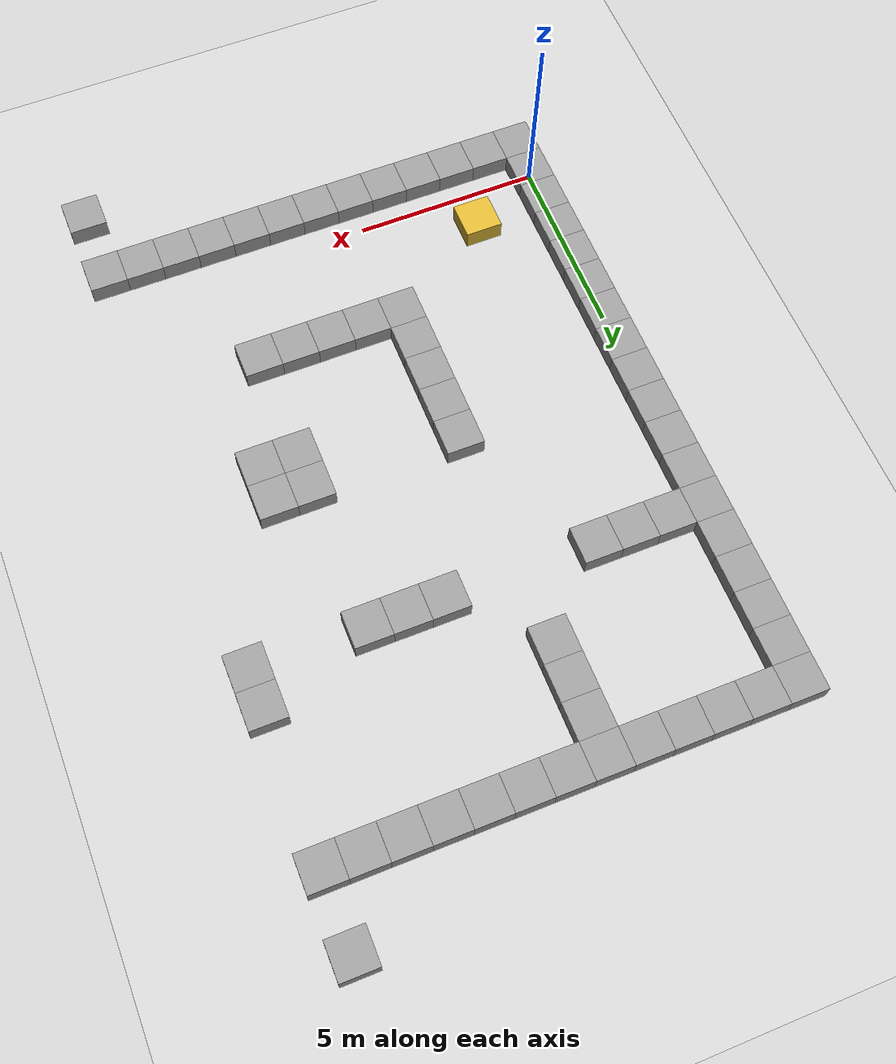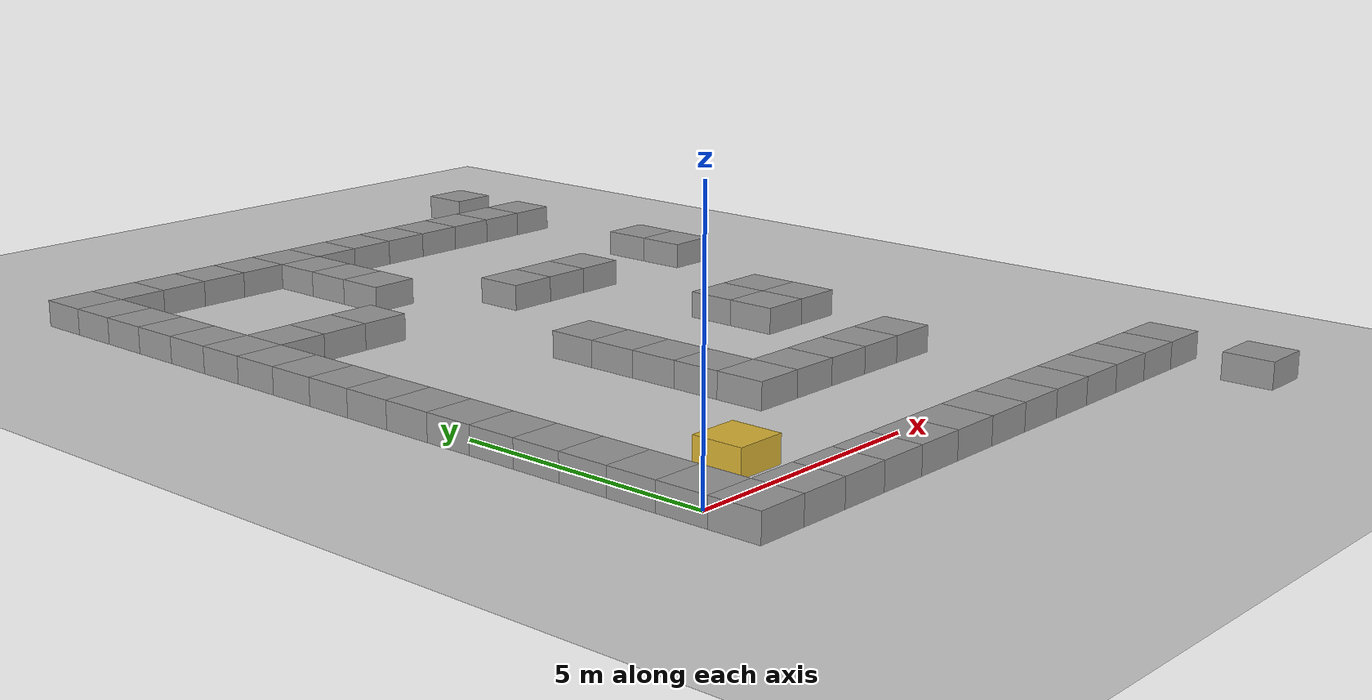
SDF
<sdf version="1.4">
 <world name="default">
  <model name="ground_plane">
   <static>1</static>
   <link name="link">
    <collision name="collision">
     <geometry><plane><normal>0 0 1</normal><size>100 100</size></plane></geometry>
     <surface><friction><ode><mu>100</mu><mu2>50</mu2></ode></friction></surface>
    </collision>
    <visual name="visual">
     <cast_shadows>0</cast_shadows>
     <geometry><plane><normal>0 0 1</normal><size>100 100</size></plane></geometry>
     <material>
      <script><uri>file://media/materials/scripts/gazebo.material</uri><name>Gazebo/Grey</name></script>
     </material>
    </visual>
    <velocity_decay><linear>0</linear><angular>0</angular></velocity_decay>
   </link>
  </model>
  <model name="unit_box_1">
   <pose>0 -1 0 0 -0 0</pose>
   <link name="link">
    <inertial>
     <mass>1</mass>
     <inertia><ixx>1</ixx><ixy>0</ixy><ixz>0</ixz><iyy>1</iyy><iyz>0</iyz><izz>1</izz></inertia>
    </inertial>
    <collision name="collision"><geometry><box><size>1 1 1</size></box></geometry></collision>
    <visual name="visual">
     <geometry><box><size>1 1 1</size></box></geometry>
     <material>
      <script><uri>file://media/materials/scripts/gazebo.material</uri><name>Gazebo/Grey</name></script>
     </material>
    </visual>
    <velocity_decay><linear>0</linear><angular>0</angular></velocity_decay>
   </link>
   <static>1</static>
  </model>
  <model name="unit_box_2">
   <pose>1 -1 0 0 -0 0</pose>
   <link name="link">
    <inertial>
     <mass>1</mass>
     <inertia><ixx>1</ixx><ixy>0</ixy><ixz>0</ixz><iyy>1</iyy><iyz>0</iyz><izz>1</izz></inertia>
    </inertial>
    <collision name="collision"><geometry><box><size>1 1 1</size></box></geometry></collision>
    <visual name="visual">
     <geometry><box><size>1 1 1</size></box></geometry>
     <material>
      <script><uri>file://media/materials/scripts/gazebo.material</uri><name>Gazebo/Grey</name></script>
     </material>
    </visual>
    <velocity_decay><linear>0</linear><angular>0</angular></velocity_decay>
   </link>
   <static>1</static>
  </model>
  <model name="unit_box_3">
   <pose>2 -1 0 0 -0 0</pose>
   <link name="link">
    <inertial>
     <mass>1</mass>
     <inertia><ixx>1</ixx><ixy>0</ixy><ixz>0</ixz><iyy>1</iyy><iyz>0</iyz><izz>1</izz></inertia>
    </inertial>
    <collision name="collision"><geometry><box><size>1 1 1</size></box></geometry></collision>
    <visual name="visual">
     <geometry><box><size>1 1 1</size></box></geometry>
     <material>
      <script><uri>file://media/materials/scripts/gazebo.material</uri><name>Gazebo/Grey</name></script>
     </material>
    </visual>
    <velocity_decay><linear>0</linear><angular>0</angular></velocity_decay>
   </link>
   <static>1</static>
  </model>
  <model name="unit_box_4">
   <pose>3 -1 0 0 -0 0</pose>
   <link name="link">
    <inertial>
     <mass>1</mass>
     <inertia><ixx>1</ixx><ixy>0</ixy><ixz>0</ixz><iyy>1</iyy><iyz>0</iyz><izz>1</izz></inertia>
    </inertial>
    <collision name="collision"><geometry><box><size>1 1 1</size></box></geometry></collision>
    <visual name="visual">
     <geometry><box><size>1 1 1</size></box></geometry>
     <material>
      <script><uri>file://media/materials/scripts/gazebo.material</uri><name>Gazebo/Grey</name></script>
     </material>
    </visual>
    <velocity_decay><linear>0</linear><angular>0</angular></velocity_decay>
   </link>
   <static>1</static>
  </model>
  <model name="unit_box_5">
   <pose>4 -1 0 0 -0 0</pose>
   <link name="link">
    <inertial>
     <mass>1</mass>
     <inertia><ixx>1</ixx><ixy>0</ixy><ixz>0</ixz><iyy>1</iyy><iyz>0</iyz><izz>1</izz></inertia>
    </inertial>
    <collision name="collision"><geometry><box><size>1 1 1</size></box></geometry></collision>
    <visual name="visual">
     <geometry><box><size>1 1 1</size></box></geometry>
     <material>
      <script><uri>file://media/materials/scripts/gazebo.material</uri><name>Gazebo/Grey</name></script>
     </material>
    </visual>
    <velocity_decay><linear>0</linear><angular>0</angular></velocity_decay>
   </link>
   <static>1</static>
  </model>
  <model name="unit_box_6">
   <pose>5 -1 0 0 -0 0</pose>
   <link name="link">
    <inertial>
     <mass>1</mass>
     <inertia><ixx>1</ixx><ixy>0</ixy><ixz>0</ixz><iyy>1</iyy><iyz>0</iyz><izz>1</izz></inertia>
    </inertial>
    <collision name="collision"><geometry><box><size>1 1 1</size></box></geometry></collision>
    <visual name="visual">
     <geometry><box><size>1 1 1</size></box></geometry>
     <material>
      <script><uri>file://media/materials/scripts/gazebo.material</uri><name>Gazebo/Grey</name></script>
     </material>
    </visual>
    <velocity_decay><linear>0</linear><angular>0</angular></velocity_decay>
   </link>
   <static>1</static>
  </model>
  <model name="unit_box_7">
   <pose>6 -1 0 0 -0 0</pose>
   <link name="link">
    <inertial>
     <mass>1</mass>
     <inertia><ixx>1</ixx><ixy>0</ixy><ixz>0</ixz><iyy>1</iyy><iyz>0</iyz><izz>1</izz></inertia>
    </inertial>
    <collision name="collision"><geometry><box><size>1 1 1</size></box></geometry></collision>
    <visual name="visual">
     <geometry><box><size>1 1 1</size></box></geometry>
     <material>
      <script><uri>file://media/materials/scripts/gazebo.material</uri><name>Gazebo/Grey</name></script>
     </material>
    </visual>
    <velocity_decay><linear>0</linear><angular>0</angular></velocity_decay>
   </link>
   <static>1</static>
  </model>
  <model name="unit_box_8">
   <pose>7 -1 0 0 -0 0</pose>
   <link name="link">
    <inertial>
     <mass>1</mass>
     <inertia><ixx>1</ixx><ixy>0</ixy><ixz>0</ixz><iyy>1</iyy><iyz>0</iyz><izz>1</izz></inertia>
    </inertial>
    <collision name="collision"><geometry><box><size>1 1 1</size></box></geometry></collision>
    <visual name="visual">
     <geometry><box><size>1 1 1</size></box></geometry>
     <material>
      <script><uri>file://media/materials/scripts/gazebo.material</uri><name>Gazebo/Grey</name></script>
     </material>
    </visual>
    <velocity_decay><linear>0</linear><angular>0</angular></velocity_decay>
   </link>
   <static>1</static>
  </model>
  <model name="unit_box_9">
   <pose>8 -1 0 0 -0 0</pose>
   <link name="link">
    <inertial>
     <mass>1</mass>
     <inertia><ixx>1</ixx><ixy>0</ixy><ixz>0</ixz><iyy>1</iyy><iyz>0</iyz><izz>1</izz></inertia>
    </inertial>
    <collision name="collision"><geometry><box><size>1 1 1</size></box></geometry></collision>
    <visual name="visual">
     <geometry><box><size>1 1 1</size></box></geometry>
     <material>
      <script><uri>file://media/materials/scripts/gazebo.material</uri><name>Gazebo/Grey</name></script>
     </material>
    </visual>
    <velocity_decay><linear>0</linear><angular>0</angular></velocity_decay>
   </link>
   <static>1</static>
  </model>
  <model name="unit_box_10">
   <pose>9 -1 0 0 -0 0</pose>
   <link name="link">
    <inertial>
     <mass>1</mass>
     <inertia><ixx>1</ixx><ixy>0</ixy><ixz>0</ixz><iyy>1</iyy><iyz>0</iyz><izz>1</izz></inertia>
    </inertial>
    <collision name="collision"><geometry><box><size>1 1 1</size></box></geometry></collision>
    <visual name="visual">
     <geometry><box><size>1 1 1</size></box></geometry>
     <material>
      <script><uri>file://media/materials/scripts/gazebo.material</uri><name>Gazebo/Grey</name></script>
     </material>
    </visual>
    <velocity_decay><linear>0</linear><angular>0</angular></velocity_decay>
   </link>
   <static>1</static>
  </model>
  <model name="unit_box_11">
   <pose>10 -1 0 0 -0 0</pose>
   <link name="link">
    <inertial>
     <mass>1</mass>
     <inertia><ixx>1</ixx><ixy>0</ixy><ixz>0</ixz><iyy>1</iyy><iyz>0</iyz><izz>1</izz></inertia>
    </inertial>
    <collision name="collision"><geometry><box><size>1 1 1</size></box></geometry></collision>
    <visual name="visual">
     <geometry><box><size>1 1 1</size></box></geometry>
     <material>
      <script><uri>file://media/materials/scripts/gazebo.material</uri><name>Gazebo/Grey</name></script>
     </material>
    </visual>
    <velocity_decay><linear>0</linear><angular>0</angular></velocity_decay>
   </link>
   <static>1</static>
  </model>
  <model name="unit_box_12">
   <pose>11 -1 0 0 -0 0</pose>
   <link name="link">
    <inertial>
     <mass>1</mass>
     <inertia><ixx>1</ixx><ixy>0</ixy><ixz>0</ixz><iyy>1</iyy><iyz>0</iyz><izz>1</izz></inertia>
    </inertial>
    <collision name="collision"><geometry><box><size>1 1 1</size></box></geometry></collision>
    <visual name="visual">
     <geometry><box><size>1 1 1</size></box></geometry>
     <material>
      <script><uri>file://media/materials/scripts/gazebo.material</uri><name>Gazebo/Grey</name></script>
     </material>
    </visual>
    <velocity_decay><linear>0</linear><angular>0</angular></velocity_decay>
   </link>
   <static>1</static>
  </model>
  <model name="unit_box_13">
   <link name="link">
    <inertial>
     <mass>1</mass>
     <inertia><ixx>1</ixx><ixy>0</ixy><ixz>0</ixz><iyy>1</iyy><iyz>0</iyz><izz>1</izz></inertia>
    </inertial>
    <collision name="collision"><geometry><box><size>1 1 1</size></box></geometry></collision>
    <visual name="visual">
     <geometry><box><size>1 1 1</size></box></geometry>
     <material>
      <script><uri>file://media/materials/scripts/gazebo.material</uri><name>Gazebo/Grey</name></script>
     </material>
    </visual>
    <velocity_decay><linear>0</linear><angular>0</angular></velocity_decay>
   </link>
   <static>1</static>
  </model>
  <model name="unit_box_14">
   <pose>0 1 0 0 -0 0</pose>
   <link name="link">
    <inertial>
     <mass>1</mass>
     <inertia><ixx>1</ixx><ixy>0</ixy><ixz>0</ixz><iyy>1</iyy><iyz>0</iyz><izz>1</izz></inertia>
    </inertial>
    <collision name="collision"><geometry><box><size>1 1 1</size></box></geometry></collision>
    <visual name="visual">
     <geometry><box><size>1 1 1</size></box></geometry>
     <material>
      <script><uri>file://media/materials/scripts/gazebo.material</uri><name>Gazebo/Grey</name></script>
     </material>
    </visual>
    <velocity_decay><linear>0</linear><angular>0</angular></velocity_decay>
   </link>
   <static>1</static>
  </model>
  <model name="unit_box_15">
   <pose>0 2 0 0 -0 0</pose>
   <link name="link">
    <inertial>
     <mass>1</mass>
     <inertia><ixx>1</ixx><ixy>0</ixy><ixz>0</ixz><iyy>1</iyy><iyz>0</iyz><izz>1</izz></inertia>
    </inertial>
    <collision name="collision"><geometry><box><size>1 1 1</size></box></geometry></collision>
    <visual name="visual">
     <geometry><box><size>1 1 1</size></box></geometry>
     <material>
      <script><uri>file://media/materials/scripts/gazebo.material</uri><name>Gazebo/Grey</name></script>
     </material>
    </visual>
    <velocity_decay><linear>0</linear><angular>0</angular></velocity_decay>
   </link>
   <static>1</static>
  </model>
  <model name="unit_box_16">
   <pose>0 3 0 0 -0 0</pose>
   <link name="link">
    <inertial>
     <mass>1</mass>
     <inertia><ixx>1</ixx><ixy>0</ixy><ixz>0</ixz><iyy>1</iyy><iyz>0</iyz><izz>1</izz></inertia>
    </inertial>
    <collision name="collision"><geometry><box><size>1 1 1</size></box></geometry></collision>
    <visual name="visual">
     <geometry><box><size>1 1 1</size></box></geometry>
     <material>
      <script><uri>file://media/materials/scripts/gazebo.material</uri><name>Gazebo/Grey</name></script>
     </material>
    </visual>
    <velocity_decay><linear>0</linear><angular>0</angular></velocity_decay>
   </link>
   <static>1</static>
  </model>
  <model name="unit_box_17">
   <pose>0 4 0 0 -0 0</pose>
   <link name="link">
    <inertial>
     <mass>1</mass>
     <inertia><ixx>1</ixx><ixy>0</ixy><ixz>0</ixz><iyy>1</iyy><iyz>0</iyz><izz>1</izz></inertia>
    </inertial>
    <collision name="collision"><geometry><box><size>1 1 1</size></box></geometry></collision>
    <visual name="visual">
     <geometry><box><size>1 1 1</size></box></geometry>
     <material>
      <script><uri>file://media/materials/scripts/gazebo.material</uri><name>Gazebo/Grey</name></script>
     </material>
    </visual>
    <velocity_decay><linear>0</linear><angular>0</angular></velocity_decay>
   </link>
   <static>1</static>
  </model>
  <model name="unit_box_18">
   <pose>0 5 0 0 -0 0</pose>
   <link name="link">
    <inertial>
     <mass>1</mass>
     <inertia><ixx>1</ixx><ixy>0</ixy><ixz>0</ixz><iyy>1</iyy><iyz>0</iyz><izz>1</izz></inertia>
    </inertial>
    <collision name="collision"><geometry><box><size>1 1 1</size></box></geometry></collision>
    <visual name="visual">
     <geometry><box><size>1 1 1</size></box></geometry>
     <material>
      <script><uri>file://media/materials/scripts/gazebo.material</uri><name>Gazebo/Grey</name></script>
     </material>
    </visual>
    <velocity_decay><linear>0</linear><angular>0</angular></velocity_decay>
   </link>
   <static>1</static>
  </model>
  <model name="unit_box_19">
   <pose>0 6 0 0 -0 0</pose>
   <link name="link">
    <inertial>
     <mass>1</mass>
     <inertia><ixx>1</ixx><ixy>0</ixy><ixz>0</ixz><iyy>1</iyy><iyz>0</iyz><izz>1</izz></inertia>
    </inertial>
    <collision name="collision"><geometry><box><size>1 1 1</size></box></geometry></collision>
    <visual name="visual">
     <geometry><box><size>1 1 1</size></box></geometry>
     <material>
      <script><uri>file://media/materials/scripts/gazebo.material</uri><name>Gazebo/Grey</name></script>
     </material>
    </visual>
    <velocity_decay><linear>0</linear><angular>0</angular></velocity_decay>
   </link>
   <static>1</static>
  </model>
  <model name="unit_box_20">
   <pose>0 7 0 0 -0 0</pose>
   <link name="link">
    <inertial>
     <mass>1</mass>
     <inertia><ixx>1</ixx><ixy>0</ixy><ixz>0</ixz><iyy>1</iyy><iyz>0</iyz><izz>1</izz></inertia>
    </inertial>
    <collision name="collision"><geometry><box><size>1 1 1</size></box></geometry></collision>
    <visual name="visual">
     <geometry><box><size>1 1 1</size></box></geometry>
     <material>
      <script><uri>file://media/materials/scripts/gazebo.material</uri><name>Gazebo/Grey</name></script>
     </material>
    </visual>
    <velocity_decay><linear>0</linear><angular>0</angular></velocity_decay>
   </link>
   <static>1</static>
  </model>
  <model name="unit_box_21">
   <pose>0 8 0 0 -0 0</pose>
   <link name="link">
    <inertial>
     <mass>1</mass>
     <inertia><ixx>1</ixx><ixy>0</ixy><ixz>0</ixz><iyy>1</iyy><iyz>0</iyz><izz>1</izz></inertia>
    </inertial>
    <collision name="collision"><geometry><box><size>1 1 1</size></box></geometry></collision>
    <visual name="visual">
     <geometry><box><size>1 1 1</size></box></geometry>
     <material>
      <script><uri>file://media/materials/scripts/gazebo.material</uri><name>Gazebo/Grey</name></script>
     </material>
    </visual>
    <velocity_decay><linear>0</linear><angular>0</angular></velocity_decay>
   </link>
   <static>1</static>
  </model>
  <model name="unit_box_22">
   <pose>0 9 0 0 -0 0</pose>
   <link name="link">
    <inertial>
     <mass>1</mass>
     <inertia><ixx>1</ixx><ixy>0</ixy><ixz>0</ixz><iyy>1</iyy><iyz>0</iyz><izz>1</izz></inertia>
    </inertial>
    <collision name="collision"><geometry><box><size>1 1 1</size></box></geometry></collision>
    <visual name="visual">
     <geometry><box><size>1 1 1</size></box></geometry>
     <material>
      <script><uri>file://media/materials/scripts/gazebo.material</uri><name>Gazebo/Grey</name></script>
     </material>
    </visual>
    <velocity_decay><linear>0</linear><angular>0</angular></velocity_decay>
   </link>
   <static>1</static>
  </model>
  <model name="unit_box_23">
   <pose>0 10 0 0 -0 0</pose>
   <link name="link">
    <inertial>
     <mass>1</mass>
     <inertia><ixx>1</ixx><ixy>0</ixy><ixz>0</ixz><iyy>1</iyy><iyz>0</iyz><izz>1</izz></inertia>
    </inertial>
    <collision name="collision"><geometry><box><size>1 1 1</size></box></geometry></collision>
    <visual name="visual">
     <geometry><box><size>1 1 1</size></box></geometry>
     <material>
      <script><uri>file://media/materials/scripts/gazebo.material</uri><name>Gazebo/Grey</name></script>
     </material>
    </visual>
    <velocity_decay><linear>0</linear><angular>0</angular></velocity_decay>
   </link>
   <static>1</static>
  </model>
  <model name="unit_box_24">
   <pose>0 11 0 0 -0 0</pose>
   <link name="link">
    <inertial>
     <mass>1</mass>
     <inertia><ixx>1</ixx><ixy>0</ixy><ixz>0</ixz><iyy>1</iyy><iyz>0</iyz><izz>1</izz></inertia>
    </inertial>
    <collision name="collision"><geometry><box><size>1 1 1</size></box></geometry></collision>
    <visual name="visual">
     <geometry><box><size>1 1 1</size></box></geometry>
     <material>
      <script><uri>file://media/materials/scripts/gazebo.material</uri><name>Gazebo/Grey</name></script>
     </material>
    </visual>
    <velocity_decay><linear>0</linear><angular>0</angular></velocity_decay>
   </link>
   <static>1</static>
  </model>
  <model name="unit_box_25">
   <pose>0 12 0 0 -0 0</pose>
   <link name="link">
    <inertial>
     <mass>1</mass>
     <inertia><ixx>1</ixx><ixy>0</ixy><ixz>0</ixz><iyy>1</iyy><iyz>0</iyz><izz>1</izz></inertia>
    </inertial>
    <collision name="collision"><geometry><box><size>1 1 1</size></box></geometry></collision>
    <visual name="visual">
     <geometry><box><size>1 1 1</size></box></geometry>
     <material>
      <script><uri>file://media/materials/scripts/gazebo.material</uri><name>Gazebo/Grey</name></script>
     </material>
    </visual>
    <velocity_decay><linear>0</linear><angular>0</angular></velocity_decay>
   </link>
   <static>1</static>
  </model>
  <model name="unit_box_26">
   <pose>0 13 0 0 -0 0</pose>
   <link name="link">
    <inertial>
     <mass>1</mass>
     <inertia><ixx>1</ixx><ixy>0</ixy><ixz>0</ixz><iyy>1</iyy><iyz>0</iyz><izz>1</izz></inertia>
    </inertial>
    <collision name="collision"><geometry><box><size>1 1 1</size></box></geometry></collision>
    <visual name="visual">
     <geometry><box><size>1 1 1</size></box></geometry>
     <material>
      <script><uri>file://media/materials/scripts/gazebo.material</uri><name>Gazebo/Grey</name></script>
     </material>
    </visual>
    <velocity_decay><linear>0</linear><angular>0</angular></velocity_decay>
   </link>
   <static>1</static>
  </model>
  <model name="unit_box_27">
   <pose>0 14 0 0 -0 0</pose>
   <link name="link">
    <inertial>
     <mass>1</mass>
     <inertia><ixx>1</ixx><ixy>0</ixy><ixz>0</ixz><iyy>1</iyy><iyz>0</iyz><izz>1</izz></inertia>
    </inertial>
    <collision name="collision"><geometry><box><size>1 1 1</size></box></geometry></collision>
    <visual name="visual">
     <geometry><box><size>1 1 1</size></box></geometry>
     <material>
      <script><uri>file://media/materials/scripts/gazebo.material</uri><name>Gazebo/Grey</name></script>
     </material>
    </visual>
    <velocity_decay><linear>0</linear><angular>0</angular></velocity_decay>
   </link>
   <static>1</static>
  </model>
  <model name="unit_box_28">
   <pose>0 15 0 0 -0 0</pose>
   <link name="link">
    <inertial>
     <mass>1</mass>
     <inertia><ixx>1</ixx><ixy>0</ixy><ixz>0</ixz><iyy>1</iyy><iyz>0</iyz><izz>1</izz></inertia>
    </inertial>
    <collision name="collision"><geometry><box><size>1 1 1</size></box></geometry></collision>
    <visual name="visual">
     <geometry><box><size>1 1 1</size></box></geometry>
     <material>
      <script><uri>file://media/materials/scripts/gazebo.material</uri><name>Gazebo/Grey</name></script>
     </material>
    </visual>
    <velocity_decay><linear>0</linear><angular>0</angular></velocity_decay>
   </link>
   <static>1</static>
  </model>
  <model name="unit_box_29">
   <pose>0 16 0 0 -0 0</pose>
   <link name="link">
    <inertial>
     <mass>1</mass>
     <inertia><ixx>1</ixx><ixy>0</ixy><ixz>0</ixz><iyy>1</iyy><iyz>0</iyz><izz>1</izz></inertia>
    </inertial>
    <collision name="collision"><geometry><box><size>1 1 1</size></box></geometry></collision>
    <visual name="visual">
     <geometry><box><size>1 1 1</size></box></geometry>
     <material>
      <script><uri>file://media/materials/scripts/gazebo.material</uri><name>Gazebo/Grey</name></script>
     </material>
    </visual>
    <velocity_decay><linear>0</linear><angular>0</angular></velocity_decay>
   </link>
   <static>1</static>
  </model>
  <model name="unit_box_30">
   <pose>1 16 0 0 -0 0</pose>
   <link name="link">
    <inertial>
     <mass>1</mass>
     <inertia><ixx>1</ixx><ixy>0</ixy><ixz>0</ixz><iyy>1</iyy><iyz>0</iyz><izz>1</izz></inertia>
    </inertial>
    <collision name="collision"><geometry><box><size>1 1 1</size></box></geometry></collision>
    <visual name="visual">
     <geometry><box><size>1 1 1</size></box></geometry>
     <material>
      <script><uri>file://media/materials/scripts/gazebo.material</uri><name>Gazebo/Grey</name></script>
     </material>
    </visual>
    <velocity_decay><linear>0</linear><angular>0</angular></velocity_decay>
   </link>
   <static>1</static>
  </model>
  <model name="unit_box_31">
   <pose>2 16 0 0 -0 0</pose>
   <link name="link">
    <inertial>
     <mass>1</mass>
     <inertia><ixx>1</ixx><ixy>0</ixy><ixz>0</ixz><iyy>1</iyy><iyz>0</iyz><izz>1</izz></inertia>
    </inertial>
    <collision name="collision"><geometry><box><size>1 1 1</size></box></geometry></collision>
    <visual name="visual">
     <geometry><box><size>1 1 1</size></box></geometry>
     <material>
      <script><uri>file://media/materials/scripts/gazebo.material</uri><name>Gazebo/Grey</name></script>
     </material>
    </visual>
    <velocity_decay><linear>0</linear><angular>0</angular></velocity_decay>
   </link>
   <static>1</static>
  </model>
  <model name="unit_box_32">
   <pose>3 16 0 0 -0 0</pose>
   <link name="link">
    <inertial>
     <mass>1</mass>
     <inertia><ixx>1</ixx><ixy>0</ixy><ixz>0</ixz><iyy>1</iyy><iyz>0</iyz><izz>1</izz></inertia>
    </inertial>
    <collision name="collision"><geometry><box><size>1 1 1</size></box></geometry></collision>
    <visual name="visual">
     <geometry><box><size>1 1 1</size></box></geometry>
     <material>
      <script><uri>file://media/materials/scripts/gazebo.material</uri><name>Gazebo/Grey</name></script>
     </material>
    </visual>
    <velocity_decay><linear>0</linear><angular>0</angular></velocity_decay>
   </link>
   <static>1</static>
  </model>
  <model name="unit_box_33">
   <pose>4 16 0 0 -0 0</pose>
   <link name="link">
    <inertial>
     <mass>1</mass>
     <inertia><ixx>1</ixx><ixy>0</ixy><ixz>0</ixz><iyy>1</iyy><iyz>0</iyz><izz>1</izz></inertia>
    </inertial>
    <collision name="collision"><geometry><box><size>1 1 1</size></box></geometry></collision>
    <visual name="visual">
     <geometry><box><size>1 1 1</size></box></geometry>
     <material>
      <script><uri>file://media/materials/scripts/gazebo.material</uri><name>Gazebo/Grey</name></script>
     </material>
    </visual>
    <velocity_decay><linear>0</linear><angular>0</angular></velocity_decay>
   </link>
   <static>1</static>
  </model>
  <model name="unit_box_34">
   <pose>5 16 0 0 -0 0</pose>
   <link name="link">
    <inertial>
     <mass>1</mass>
     <inertia><ixx>1</ixx><ixy>0</ixy><ixz>0</ixz><iyy>1</iyy><iyz>0</iyz><izz>1</izz></inertia>
    </inertial>
    <collision name="collision"><geometry><box><size>1 1 1</size></box></geometry></collision>
    <visual name="visual">
     <geometry><box><size>1 1 1</size></box></geometry>
     <material>
      <script><uri>file://media/materials/scripts/gazebo.material</uri><name>Gazebo/Grey</name></script>
     </material>
    </visual>
    <velocity_decay><linear>0</linear><angular>0</angular></velocity_decay>
   </link>
   <static>1</static>
  </model>
  <model name="unit_box_35">
   <pose>6 16 0 0 -0 0</pose>
   <link name="link">
    <inertial>
     <mass>1</mass>
     <inertia><ixx>1</ixx><ixy>0</ixy><ixz>0</ixz><iyy>1</iyy><iyz>0</iyz><izz>1</izz></inertia>
    </inertial>
    <collision name="collision"><geometry><box><size>1 1 1</size></box></geometry></collision>
    <visual name="visual">
     <geometry><box><size>1 1 1</size></box></geometry>
     <material>
      <script><uri>file://media/materials/scripts/gazebo.material</uri><name>Gazebo/Grey</name></script>
     </material>
    </visual>
    <velocity_decay><linear>0</linear><angular>0</angular></velocity_decay>
   </link>
   <static>1</static>
  </model>
  <model name="unit_box_36">
   <pose>7 16 0 0 -0 0</pose>
   <link name="link">
    <inertial>
     <mass>1</mass>
     <inertia><ixx>1</ixx><ixy>0</ixy><ixz>0</ixz><iyy>1</iyy><iyz>0</iyz><izz>1</izz></inertia>
    </inertial>
    <collision name="collision"><geometry><box><size>1 1 1</size></box></geometry></collision>
    <visual name="visual">
     <geometry><box><size>1 1 1</size></box></geometry>
     <material>
      <script><uri>file://media/materials/scripts/gazebo.material</uri><name>Gazebo/Grey</name></script>
     </material>
    </visual>
    <velocity_decay><linear>0</linear><angular>0</angular></velocity_decay>
   </link>
   <static>1</static>
  </model>
  <model name="unit_box_37">
   <pose>8 16 0 0 -0 0</pose>
   <link name="link">
    <inertial>
     <mass>1</mass>
     <inertia><ixx>1</ixx><ixy>0</ixy><ixz>0</ixz><iyy>1</iyy><iyz>0</iyz><izz>1</izz></inertia>
    </inertial>
    <collision name="collision"><geometry><box><size>1 1 1</size></box></geometry></collision>
    <visual name="visual">
     <geometry><box><size>1 1 1</size></box></geometry>
     <material>
      <script><uri>file://media/materials/scripts/gazebo.material</uri><name>Gazebo/Grey</name></script>
     </material>
    </visual>
    <velocity_decay><linear>0</linear><angular>0</angular></velocity_decay>
   </link>
   <static>1</static>
  </model>
  <model name="unit_box_38">
   <pose>9 16 0 0 -0 0</pose>
   <link name="link">
    <inertial>
     <mass>1</mass>
     <inertia><ixx>1</ixx><ixy>0</ixy><ixz>0</ixz><iyy>1</iyy><iyz>0</iyz><izz>1</izz></inertia>
    </inertial>
    <collision name="collision"><geometry><box><size>1 1 1</size></box></geometry></collision>
    <visual name="visual">
     <geometry><box><size>1 1 1</size></box></geometry>
     <material>
      <script><uri>file://media/materials/scripts/gazebo.material</uri><name>Gazebo/Grey</name></script>
     </material>
    </visual>
    <velocity_decay><linear>0</linear><angular>0</angular></velocity_decay>
   </link>
   <static>1</static>
  </model>
  <model name="unit_box_39">
   <pose>10 16 0 0 -0 0</pose>
   <link name="link">
    <inertial>
     <mass>1</mass>
     <inertia><ixx>1</ixx><ixy>0</ixy><ixz>0</ixz><iyy>1</iyy><iyz>0</iyz><izz>1</izz></inertia>
    </inertial>
    <collision name="collision"><geometry><box><size>1 1 1</size></box></geometry></collision>
    <visual name="visual">
     <geometry><box><size>1 1 1</size></box></geometry>
     <material>
      <script><uri>file://media/materials/scripts/gazebo.material</uri><name>Gazebo/Grey</name></script>
     </material>
    </visual>
    <velocity_decay><linear>0</linear><angular>0</angular></velocity_decay>
   </link>
   <static>1</static>
  </model>
  <model name="unit_box_40">
   <pose>11 16 0 0 -0 0</pose>
   <link name="link">
    <inertial>
     <mass>1</mass>
     <inertia><ixx>1</ixx><ixy>0</ixy><ixz>0</ixz><iyy>1</iyy><iyz>0</iyz><izz>1</izz></inertia>
    </inertial>
    <collision name="collision"><geometry><box><size>1 1 1</size></box></geometry></collision>
    <visual name="visual">
     <geometry><box><size>1 1 1</size></box></geometry>
     <material>
      <script><uri>file://media/materials/scripts/gazebo.material</uri><name>Gazebo/Grey</name></script>
     </material>
    </visual>
    <velocity_decay><linear>0</linear><angular>0</angular></velocity_decay>
   </link>
   <static>1</static>
  </model>
  <model name="unit_box_41">
   <pose>12 16 0 0 -0 0</pose>
   <link name="link">
    <inertial>
     <mass>1</mass>
     <inertia><ixx>1</ixx><ixy>0</ixy><ixz>0</ixz><iyy>1</iyy><iyz>0</iyz><izz>1</izz></inertia>
    </inertial>
    <collision name="collision"><geometry><box><size>1 1 1</size></box></geometry></collision>
    <visual name="visual">
     <geometry><box><size>1 1 1</size></box></geometry>
     <material>
      <script><uri>file://media/materials/scripts/gazebo.material</uri><name>Gazebo/Grey</name></script>
     </material>
    </visual>
    <velocity_decay><linear>0</linear><angular>0</angular></velocity_decay>
   </link>
   <static>1</static>
  </model>
  <model name="unit_box_76">
   <pose>12 -1 0 0 -0 0</pose>
   <link name="link">
    <inertial>
     <mass>1</mass>
     <inertia><ixx>1</ixx><ixy>0</ixy><ixz>0</ixz><iyy>1</iyy><iyz>0</iyz><izz>1</izz></inertia>
    </inertial>
    <collision name="collision"><geometry><box><size>1 1 1</size></box></geometry></collision>
    <visual name="visual">
     <geometry><box><size>1 1 1</size></box></geometry>
     <material>
      <script><uri>file://media/materials/scripts/gazebo.material</uri><name>Gazebo/Grey</name></script>
     </material>
    </visual>
    <velocity_decay><linear>0</linear><angular>0</angular></velocity_decay>
   </link>
   <static>1</static>
  </model>
  <model name="unit_box_82">
   <pose>12 -3 0 0 -0 0</pose>
   <link name="link">
    <inertial>
     <mass>1</mass>
     <inertia><ixx>1</ixx><ixy>0</ixy><ixz>0</ixz><iyy>1</iyy><iyz>0</iyz><izz>1</izz></inertia>
    </inertial>
    <collision name="collision"><geometry><box><size>1 1 1</size></box></geometry></collision>
    <visual name="visual">
     <geometry><box><size>1 1 1</size></box></geometry>
     <material>
      <script><uri>file://media/materials/scripts/gazebo.material</uri><name>Gazebo/Grey</name></script>
     </material>
    </visual>
    <velocity_decay><linear>0</linear><angular>0</angular></velocity_decay>
   </link>
   <static>1</static>
  </model>
  <model name="unit_box_85">
   <pose>12 18 0 0 -0 0</pose>
   <link name="link">
    <inertial>
     <mass>1</mass>
     <inertia><ixx>1</ixx><ixy>0</ixy><ixz>0</ixz><iyy>1</iyy><iyz>0</iyz><izz>1</izz></inertia>
    </inertial>
    <collision name="collision"><geometry><box><size>1 1 1</size></box></geometry></collision>
    <visual name="visual">
     <geometry><box><size>1 1 1</size></box></geometry>
     <material>
      <script><uri>file://media/materials/scripts/gazebo.material</uri><name>Gazebo/Grey</name></script>
     </material>
    </visual>
    <velocity_decay><linear>0</linear><angular>0</angular></velocity_decay>
   </link>
   <static>1</static>
  </model>
  <model name="unit_box_94">
   <pose>5 15 0 0 -0 0</pose>
   <link name="link">
    <inertial>
     <mass>1</mass>
     <inertia><ixx>1</ixx><ixy>0</ixy><ixz>0</ixz><iyy>1</iyy><iyz>0</iyz><izz>1</izz></inertia>
    </inertial>
    <collision name="collision"><geometry><box><size>1 1 1</size></box></geometry></collision>
    <visual name="visual">
     <geometry><box><size>1 1 1</size></box></geometry>
     <material>
      <script><uri>file://media/materials/scripts/gazebo.material</uri><name>Gazebo/Grey</name></script>
     </material>
    </visual>
    <velocity_decay><linear>0</linear><angular>0</angular></velocity_decay>
   </link>
   <static>1</static>
  </model>
  <model name="unit_box_95">
   <pose>5 14 0 0 -0 0</pose>
   <link name="link">
    <inertial>
     <mass>1</mass>
     <inertia><ixx>1</ixx><ixy>0</ixy><ixz>0</ixz><iyy>1</iyy><iyz>0</iyz><izz>1</izz></inertia>
    </inertial>
    <collision name="collision"><geometry><box><size>1 1 1</size></box></geometry></collision>
    <visual name="visual">
     <geometry><box><size>1 1 1</size></box></geometry>
     <material>
      <script><uri>file://media/materials/scripts/gazebo.material</uri><name>Gazebo/Grey</name></script>
     </material>
    </visual>
    <velocity_decay><linear>0</linear><angular>0</angular></velocity_decay>
   </link>
   <static>1</static>
  </model>
  <model name="unit_box_96">
   <pose>5 13 0 0 -0 0</pose>
   <link name="link">
    <inertial>
     <mass>1</mass>
     <inertia><ixx>1</ixx><ixy>0</ixy><ixz>0</ixz><iyy>1</iyy><iyz>0</iyz><izz>1</izz></inertia>
    </inertial>
    <collision name="collision"><geometry><box><size>1 1 1</size></box></geometry></collision>
    <visual name="visual">
     <geometry><box><size>1 1 1</size></box></geometry>
     <material>
      <script><uri>file://media/materials/scripts/gazebo.material</uri><name>Gazebo/Grey</name></script>
     </material>
    </visual>
    <velocity_decay><linear>0</linear><angular>0</angular></velocity_decay>
   </link>
   <static>1</static>
  </model>
  <model name="unit_box_97">
   <pose>1 11 0 0 -0 0</pose>
   <link name="link">
    <inertial>
     <mass>1</mass>
     <inertia><ixx>1</ixx><ixy>0</ixy><ixz>0</ixz><iyy>1</iyy><iyz>0</iyz><izz>1</izz></inertia>
    </inertial>
    <collision name="collision"><geometry><box><size>1 1 1</size></box></geometry></collision>
    <visual name="visual">
     <geometry><box><size>1 1 1</size></box></geometry>
     <material>
      <script><uri>file://media/materials/scripts/gazebo.material</uri><name>Gazebo/Grey</name></script>
     </material>
    </visual>
    <velocity_decay><linear>0</linear><angular>0</angular></velocity_decay>
   </link>
   <static>1</static>
  </model>
  <model name="unit_box_98">
   <pose>2 11 0 0 -0 0</pose>
   <link name="link">
    <inertial>
     <mass>1</mass>
     <inertia><ixx>1</ixx><ixy>0</ixy><ixz>0</ixz><iyy>1</iyy><iyz>0</iyz><izz>1</izz></inertia>
    </inertial>
    <collision name="collision"><geometry><box><size>1 1 1</size></box></geometry></collision>
    <visual name="visual">
     <geometry><box><size>1 1 1</size></box></geometry>
     <material>
      <script><uri>file://media/materials/scripts/gazebo.material</uri><name>Gazebo/Grey</name></script>
     </material>
    </visual>
    <velocity_decay><linear>0</linear><angular>0</angular></velocity_decay>
   </link>
   <static>1</static>
  </model>
  <model name="unit_box_99">
   <pose>3 11 0 0 -0 0</pose>
   <link name="link">
    <inertial>
     <mass>1</mass>
     <inertia><ixx>1</ixx><ixy>0</ixy><ixz>0</ixz><iyy>1</iyy><iyz>0</iyz><izz>1</izz></inertia>
    </inertial>
    <collision name="collision"><geometry><box><size>1 1 1</size></box></geometry></collision>
    <visual name="visual">
     <geometry><box><size>1 1 1</size></box></geometry>
     <material>
      <script><uri>file://media/materials/scripts/gazebo.material</uri><name>Gazebo/Grey</name></script>
     </material>
    </visual>
    <velocity_decay><linear>0</linear><angular>0</angular></velocity_decay>
   </link>
   <static>1</static>
  </model>
  <model name="unit_box_100">
   <pose>5 7 0 0 -0 0</pose>
   <link name="link">
    <inertial>
     <mass>1</mass>
     <inertia><ixx>1</ixx><ixy>0</ixy><ixz>0</ixz><iyy>1</iyy><iyz>0</iyz><izz>1</izz></inertia>
    </inertial>
    <collision name="collision"><geometry><box><size>1 1 1</size></box></geometry></collision>
    <visual name="visual">
     <geometry><box><size>1 1 1</size></box></geometry>
     <material>
      <script><uri>file://media/materials/scripts/gazebo.material</uri><name>Gazebo/Grey</name></script>
     </material>
    </visual>
    <velocity_decay><linear>0</linear><angular>0</angular></velocity_decay>
   </link>
   <static>1</static>
  </model>
  <model name="unit_box_101">
   <pose>5 6 0 0 -0 0</pose>
   <link name="link">
    <inertial>
     <mass>1</mass>
     <inertia><ixx>1</ixx><ixy>0</ixy><ixz>0</ixz><iyy>1</iyy><iyz>0</iyz><izz>1</izz></inertia>
    </inertial>
    <collision name="collision"><geometry><box><size>1 1 1</size></box></geometry></collision>
    <visual name="visual">
     <geometry><box><size>1 1 1</size></box></geometry>
     <material>
      <script><uri>file://media/materials/scripts/gazebo.material</uri><name>Gazebo/Grey</name></script>
     </material>
    </visual>
    <velocity_decay><linear>0</linear><angular>0</angular></velocity_decay>
   </link>
   <static>1</static>
  </model>
  <model name="unit_box_102">
   <pose>5 5 0 0 -0 0</pose>
   <link name="link">
    <inertial>
     <mass>1</mass>
     <inertia><ixx>1</ixx><ixy>0</ixy><ixz>0</ixz><iyy>1</iyy><iyz>0</iyz><izz>1</izz></inertia>
    </inertial>
    <collision name="collision"><geometry><box><size>1 1 1</size></box></geometry></collision>
    <visual name="visual">
     <geometry><box><size>1 1 1</size></box></geometry>
     <material>
      <script><uri>file://media/materials/scripts/gazebo.material</uri><name>Gazebo/Grey</name></script>
     </material>
    </visual>
    <velocity_decay><linear>0</linear><angular>0</angular></velocity_decay>
   </link>
   <static>1</static>
  </model>
  <model name="unit_box_103">
   <pose>5 4 0 0 -0 0</pose>
   <link name="link">
    <inertial>
     <mass>1</mass>
     <inertia><ixx>1</ixx><ixy>0</ixy><ixz>0</ixz><iyy>1</iyy><iyz>0</iyz><izz>1</izz></inertia>
    </inertial>
    <collision name="collision"><geometry><box><size>1 1 1</size></box></geometry></collision>
    <visual name="visual">
     <geometry><box><size>1 1 1</size></box></geometry>
     <material>
      <script><uri>file://media/materials/scripts/gazebo.material</uri><name>Gazebo/Grey</name></script>
     </material>
    </visual>
    <velocity_decay><linear>0</linear><angular>0</angular></velocity_decay>
   </link>
   <static>1</static>
  </model>
  <model name="unit_box_104">
   <pose>5 3 0 0 -0 0</pose>
   <link name="link">
    <inertial>
     <mass>1</mass>
     <inertia><ixx>1</ixx><ixy>0</ixy><ixz>0</ixz><iyy>1</iyy><iyz>0</iyz><izz>1</izz></inertia>
    </inertial>
    <collision name="collision"><geometry><box><size>1 1 1</size></box></geometry></collision>
    <visual name="visual">
     <geometry><box><size>1 1 1</size></box></geometry>
     <material>
      <script><uri>file://media/materials/scripts/gazebo.material</uri><name>Gazebo/Grey</name></script>
     </material>
    </visual>
    <velocity_decay><linear>0</linear><angular>0</angular></velocity_decay>
   </link>
   <static>1</static>
  </model>
  <model name="unit_box_105">
   <pose>6 3 0 0 -0 0</pose>
   <link name="link">
    <inertial>
     <mass>1</mass>
     <inertia><ixx>1</ixx><ixy>0</ixy><ixz>0</ixz><iyy>1</iyy><iyz>0</iyz><izz>1</izz></inertia>
    </inertial>
    <collision name="collision"><geometry><box><size>1 1 1</size></box></geometry></collision>
    <visual name="visual">
     <geometry><box><size>1 1 1</size></box></geometry>
     <material>
      <script><uri>file://media/materials/scripts/gazebo.material</uri><name>Gazebo/Grey</name></script>
     </material>
    </visual>
    <velocity_decay><linear>0</linear><angular>0</angular></velocity_decay>
   </link>
   <static>1</static>
  </model>
  <model name="unit_box_106">
   <pose>7 3 0 0 -0 0</pose>
   <link name="link">
    <inertial>
     <mass>1</mass>
     <inertia><ixx>1</ixx><ixy>0</ixy><ixz>0</ixz><iyy>1</iyy><iyz>0</iyz><izz>1</izz></inertia>
    </inertial>
    <collision name="collision"><geometry><box><size>1 1 1</size></box></geometry></collision>
    <visual name="visual">
     <geometry><box><size>1 1 1</size></box></geometry>
     <material>
      <script><uri>file://media/materials/scripts/gazebo.material</uri><name>Gazebo/Grey</name></script>
     </material>
    </visual>
    <velocity_decay><linear>0</linear><angular>0</angular></velocity_decay>
   </link>
   <static>1</static>
  </model>
  <model name="unit_box_107">
   <pose>8 3 0 0 -0 0</pose>
   <link name="link">
    <inertial>
     <mass>1</mass>
     <inertia><ixx>1</ixx><ixy>0</ixy><ixz>0</ixz><iyy>1</iyy><iyz>0</iyz><izz>1</izz></inertia>
    </inertial>
    <collision name="collision"><geometry><box><size>1 1 1</size></box></geometry></collision>
    <visual name="visual">
     <geometry><box><size>1 1 1</size></box></geometry>
     <material>
      <script><uri>file://media/materials/scripts/gazebo.material</uri><name>Gazebo/Grey</name></script>
     </material>
    </visual>
    <velocity_decay><linear>0</linear><angular>0</angular></velocity_decay>
   </link>
   <static>1</static>
  </model>
  <model name="unit_box_108">
   <pose>9 3 0 0 -0 0</pose>
   <link name="link">
    <inertial>
     <mass>1</mass>
     <inertia><ixx>1</ixx><ixy>0</ixy><ixz>0</ixz><iyy>1</iyy><iyz>0</iyz><izz>1</izz></inertia>
    </inertial>
    <collision name="collision"><geometry><box><size>1 1 1</size></box></geometry></collision>
    <visual name="visual">
     <geometry><box><size>1 1 1</size></box></geometry>
     <material>
      <script><uri>file://media/materials/scripts/gazebo.material</uri><name>Gazebo/Grey</name></script>
     </material>
    </visual>
    <velocity_decay><linear>0</linear><angular>0</angular></velocity_decay>
   </link>
   <static>1</static>
  </model>
  <model name="unit_box_109">
   <pose>7 11 0 0 -0 0</pose>
   <link name="link">
    <inertial>
     <mass>1</mass>
     <inertia><ixx>1</ixx><ixy>0</ixy><ixz>0</ixz><iyy>1</iyy><iyz>0</iyz><izz>1</izz></inertia>
    </inertial>
    <collision name="collision"><geometry><box><size>1 1 1</size></box></geometry></collision>
    <visual name="visual">
     <geometry><box><size>1 1 1</size></box></geometry>
     <material>
      <script><uri>file://media/materials/scripts/gazebo.material</uri><name>Gazebo/Grey</name></script>
     </material>
    </visual>
    <velocity_decay><linear>0</linear><angular>0</angular></velocity_decay>
   </link>
   <static>1</static>
  </model>
  <model name="unit_box_110">
   <pose>8 11 0 0 -0 0</pose>
   <link name="link">
    <inertial>
     <mass>1</mass>
     <inertia><ixx>1</ixx><ixy>0</ixy><ixz>0</ixz><iyy>1</iyy><iyz>0</iyz><izz>1</izz></inertia>
    </inertial>
    <collision name="collision"><geometry><box><size>1 1 1</size></box></geometry></collision>
    <visual name="visual">
     <geometry><box><size>1 1 1</size></box></geometry>
     <material>
      <script><uri>file://media/materials/scripts/gazebo.material</uri><name>Gazebo/Grey</name></script>
     </material>
    </visual>
    <velocity_decay><linear>0</linear><angular>0</angular></velocity_decay>
   </link>
   <static>1</static>
  </model>
  <model name="unit_box_111">
   <pose>9 11 0 0 -0 0</pose>
   <link name="link">
    <inertial>
     <mass>1</mass>
     <inertia><ixx>1</ixx><ixy>0</ixy><ixz>0</ixz><iyy>1</iyy><iyz>0</iyz><izz>1</izz></inertia>
    </inertial>
    <collision name="collision"><geometry><box><size>1 1 1</size></box></geometry></collision>
    <visual name="visual">
     <geometry><box><size>1 1 1</size></box></geometry>
     <material>
      <script><uri>file://media/materials/scripts/gazebo.material</uri><name>Gazebo/Grey</name></script>
     </material>
    </visual>
    <velocity_decay><linear>0</linear><angular>0</angular></velocity_decay>
   </link>
   <static>1</static>
  </model>
  <model name="unit_box_112">
   <pose>12 11 0 0 -0 0</pose>
   <link name="link">
    <inertial>
     <mass>1</mass>
     <inertia><ixx>1</ixx><ixy>0</ixy><ixz>0</ixz><iyy>1</iyy><iyz>0</iyz><izz>1</izz></inertia>
    </inertial>
    <collision name="collision"><geometry><box><size>1 1 1</size></box></geometry></collision>
    <visual name="visual">
     <geometry><box><size>1 1 1</size></box></geometry>
     <material>
      <script><uri>file://media/materials/scripts/gazebo.material</uri><name>Gazebo/Grey</name></script>
     </material>
    </visual>
    <velocity_decay><linear>0</linear><angular>0</angular></velocity_decay>
   </link>
   <static>1</static>
  </model>
  <model name="unit_box_113">
   <pose>12 12 0 0 -0 0</pose>
   <link name="link">
    <inertial>
     <mass>1</mass>
     <inertia><ixx>1</ixx><ixy>0</ixy><ixz>0</ixz><iyy>1</iyy><iyz>0</iyz><izz>1</izz></inertia>
    </inertial>
    <collision name="collision"><geometry><box><size>1 1 1</size></box></geometry></collision>
    <visual name="visual">
     <geometry><box><size>1 1 1</size></box></geometry>
     <material>
      <script><uri>file://media/materials/scripts/gazebo.material</uri><name>Gazebo/Grey</name></script>
     </material>
    </visual>
    <velocity_decay><linear>0</linear><angular>0</angular></velocity_decay>
   </link>
   <static>1</static>
  </model>
  <model name="unit_box_127">
   <pose>9 7 0 0 -0 0</pose>
   <link name="link">
    <inertial>
     <mass>1</mass>
     <inertia><ixx>1</ixx><ixy>0</ixy><ixz>0</ixz><iyy>1</iyy><iyz>0</iyz><izz>1</izz></inertia>
    </inertial>
    <collision name="collision"><geometry><box><size>1 1 1</size></box></geometry></collision>
    <visual name="visual">
     <geometry><box><size>1 1 1</size></box></geometry>
     <material>
      <script><uri>file://media/materials/scripts/gazebo.material</uri><name>Gazebo/Grey</name></script>
     </material>
    </visual>
    <velocity_decay><linear>0</linear><angular>0</angular></velocity_decay>
   </link>
   <static>1</static>
  </model>
  <model name="unit_box_128">
   <pose>9 6 0 0 -0 0</pose>
   <link name="link">
    <inertial>
     <mass>1</mass>
     <inertia><ixx>1</ixx><ixy>0</ixy><ixz>0</ixz><iyy>1</iyy><iyz>0</iyz><izz>1</izz></inertia>
    </inertial>
    <collision name="collision"><geometry><box><size>1 1 1</size></box></geometry></collision>
    <visual name="visual">
     <geometry><box><size>1 1 1</size></box></geometry>
     <material>
      <script><uri>file://media/materials/scripts/gazebo.material</uri><name>Gazebo/Grey</name></script>
     </material>
    </visual>
    <velocity_decay><linear>0</linear><angular>0</angular></velocity_decay>
   </link>
   <static>1</static>
  </model>
  <model name="unit_box_129">
   <pose>10 7 0 0 -0 0</pose>
   <link name="link">
    <inertial>
     <mass>1</mass>
     <inertia><ixx>1</ixx><ixy>0</ixy><ixz>0</ixz><iyy>1</iyy><iyz>0</iyz><izz>1</izz></inertia>
    </inertial>
    <collision name="collision"><geometry><box><size>1 1 1</size></box></geometry></collision>
    <visual name="visual">
     <geometry><box><size>1 1 1</size></box></geometry>
     <material>
      <script><uri>file://media/materials/scripts/gazebo.material</uri><name>Gazebo/Grey</name></script>
     </material>
    </visual>
    <velocity_decay><linear>0</linear><angular>0</angular></velocity_decay>
   </link>
   <static>1</static>
  </model>
  <model name="unit_box_130">
   <pose>10 6 0 0 -0 0</pose>
   <link name="link">
    <inertial>
     <mass>1</mass>
     <inertia><ixx>1</ixx><ixy>0</ixy><ixz>0</ixz><iyy>1</iyy><iyz>0</iyz><izz>1</izz></inertia>
    </inertial>
    <collision name="collision"><geometry><box><size>1 1 1</size></box></geometry></collision>
    <visual name="visual">
     <geometry><box><size>1 1 1</size></box></geometry>
     <material>
      <script><uri>file://media/materials/scripts/gazebo.material</uri><name>Gazebo/Grey</name></script>
     </material>
    </visual>
    <velocity_decay><linear>0</linear><angular>0</angular></velocity_decay>
   </link>
   <static>1</static>
  </model>
  <model name="unit_box_137">
   <pose>2 1 0 0 -0 0</pose>
   <link name="link">
    <inertial>
     <mass>1</mass>
     <inertia><ixx>1</ixx><ixy>0</ixy><ixz>0</ixz><iyy>1</iyy><iyz>0</iyz><izz>1</izz></inertia>
    </inertial>
    <collision name="collision"><geometry><box><size>1 1 1</size></box></geometry></collision>
    <visual name="visual">
     <geometry><box><size>1 1 1</size></box></geometry>
     <material>
      <script><uri>file://media/materials/scripts/gazebo.material</uri><name>Gazebo/Gold</name></script>
     </material>
    </visual>
    <velocity_decay><linear>0</linear><angular>0</angular></velocity_decay>
   </link>
   <static>1</static>
  </model>
 </world>
</sdf>
